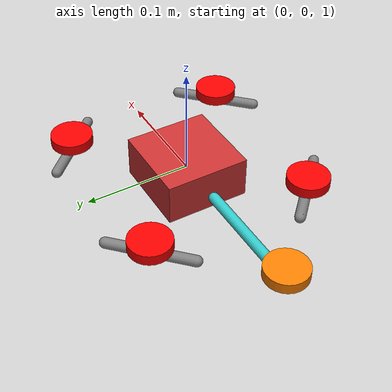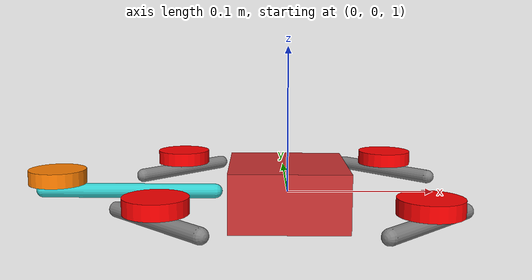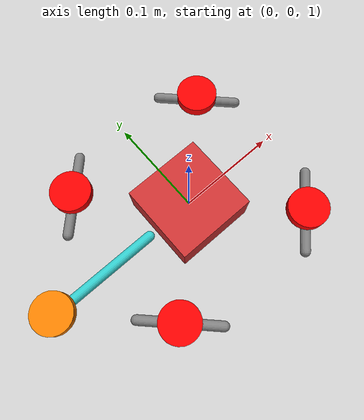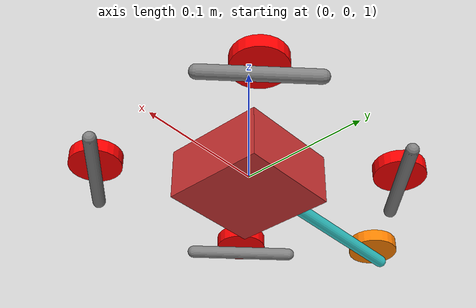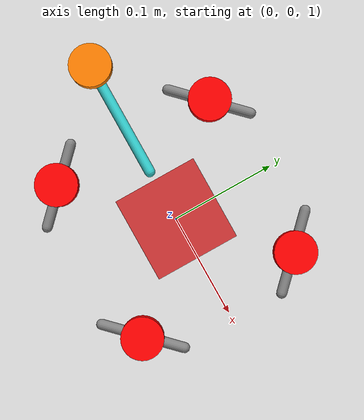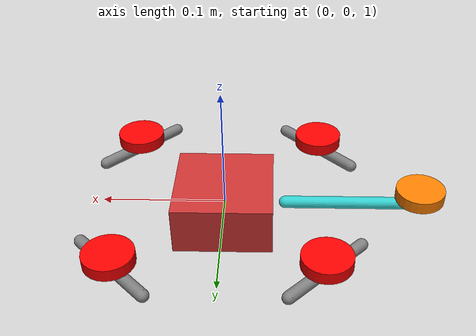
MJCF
<mujoco model="mini_penta">
    <compiler angle="degree" coordinate="local" eulerseq="xyz"/>
    <option timestep="0.002" gravity="0 0 -9.81"/>

    <!-- Hardware Profile: Small, agile drone with fast ESCs -->
    <custom>
        <numeric name="transport_delay_ms" data="10.0"/>
        <numeric name="motor_tau" data="0.02"/>
        <numeric name="dof_mask" data="0 0 1 1 1 1"/>
    </custom>

    <worldbody>
        <light name="sun" pos="0 0 10" dir="0 0 -1"/>
        <geom name="floor" type="plane" size="10 10 0.1" rgba="0.8 0.9 0.8 1"/>

        <body name="drone" pos="0 0 1">
            <freejoint name="root"/>
            <!-- 0.5 kg mass, centered -->
            <inertial pos="0 0 0" mass="0.5" diaginertia="0.002 0.002 0.003"/>
            <geom name="core" type="box" size="0.04 0.04 0.02" rgba="0.8 0.2 0.2 1"/>

            <!-- Standard Quad Motors (Radius ~0.11m) -->
            <body name="arm_0" pos="0.08 -0.08 0.0">
                <geom type="capsule" size="0.005 0.04" rgba="0.5 0.5 0.5 1" euler="90 -45 0"/>
                <site name="thruster_0" pos="0 0 0.01" type="cylinder" size="0.02 0.005" rgba="1 0 0 1"/>
            </body>
            <body name="arm_1" pos="0.08 0.08 0.0">
                <geom type="capsule" size="0.005 0.04" rgba="0.5 0.5 0.5 1" euler="90 45 0"/>
                <site name="thruster_1" pos="0 0 0.01" type="cylinder" size="0.02 0.005" rgba="1 0 0 1"/>
            </body>
            <body name="arm_2" pos="-0.08 0.08 0.0">
                <geom type="capsule" size="0.005 0.04" rgba="0.5 0.5 0.5 1" euler="90 -45 0"/>
                <site name="thruster_2" pos="0 0 0.01" type="cylinder" size="0.02 0.005" rgba="1 0 0 1"/>
            </body>
            <body name="arm_3" pos="-0.08 -0.08 0.0">
                <geom type="capsule" size="0.005 0.04" rgba="0.5 0.5 0.5 1" euler="90 45 0"/>
                <site name="thruster_3" pos="0 0 0.01" type="cylinder" size="0.02 0.005" rgba="1 0 0 1"/>
            </body>

            <!-- The 5th Motor: Extended Tail Boom -->
            <body name="arm_4" pos="-0.16 0.0 0.0">
                <geom type="capsule" size="0.005 0.06" pos="0.05 0 0" rgba="0.2 0.8 0.8 1" euler="0 90 0"/>
                <site name="thruster_4" pos="0 0 0.01" type="cylinder" size="0.02 0.005" rgba="1 0.5 0 1"/>
            </body>
        </body>
    </worldbody>

    <actuator>
        <!-- Standard Quad allocation -->
        <general name="m_0" site="thruster_0" gear="0 0 1 0 0 -0.015" ctrllimited="true" ctrlrange="0 8"/>
        <general name="m_1" site="thruster_1" gear="0 0 1 0 0  0.015" ctrllimited="true" ctrlrange="0 8"/>
        <general name="m_2" site="thruster_2" gear="0 0 1 0 0 -0.015" ctrllimited="true" ctrlrange="0 8"/>
        <general name="m_3" site="thruster_3" gear="0 0 1 0 0  0.015" ctrllimited="true" ctrlrange="0 8"/>

        <!-- The 5th motor -->
        <general name="m_4" site="thruster_4" gear="0 0 1 0 0 -0.015" ctrllimited="true" ctrlrange="0 8"/>
    </actuator>
</mujoco>
